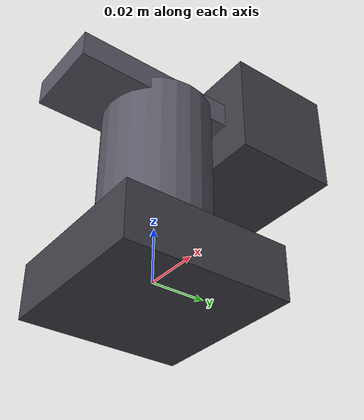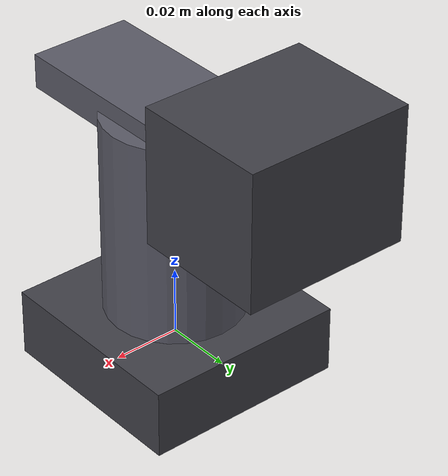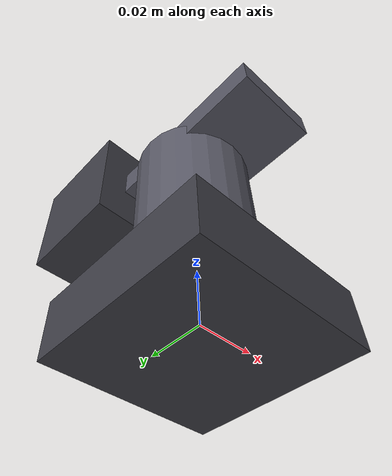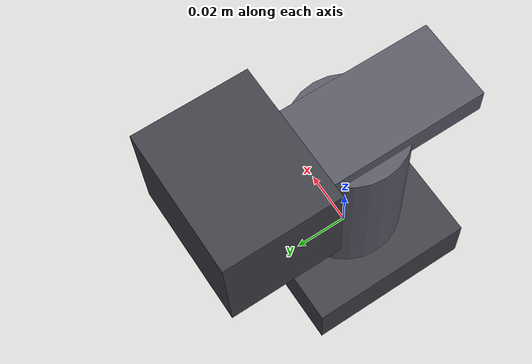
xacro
<?xml version="1.0"?>
<robot name="sbgc_gimbal" xmlns:xacro="http://www.ros.org/wiki/xacro">

  <xacro:arg name="prefix" default="gimbal_"/>

  <!-- Radians. Keep these in step with the driver's limit_min_deg /
       limit_max_deg; robot_state_publisher will otherwise render joint
       positions the driver refuses to command. -->
  <xacro:arg name="roll_min"  default="-0.785"/>
  <xacro:arg name="roll_max"  default="0.785"/>
  <xacro:arg name="pitch_min" default="-1.571"/>
  <xacro:arg name="pitch_max" default="0.698"/>
  <xacro:arg name="yaw_min"   default="-2.967"/>
  <xacro:arg name="yaw_max"   default="2.967"/>
  <xacro:arg name="max_rate"  default="0.79"/>

  <!-- Which stage the controller is bolted to, and where on it. -->
  <xacro:arg name="imu_parent" default="pitch"/>
  <xacro:arg name="imu_xyz"    default="0 0 0"/>
  <xacro:arg name="imu_rpy"    default="0 0 0"/>

  <xacro:include filename="$(find sbgc_description)/urdf/sbgc_gimbal.urdf.xacro"/>

  <link name="base_link"/>

  <xacro:sbgc_gimbal
      prefix="$(arg prefix)"
      parent="base_link"
      roll_min="$(arg roll_min)"   roll_max="$(arg roll_max)"
      pitch_min="$(arg pitch_min)" pitch_max="$(arg pitch_max)"
      yaw_min="$(arg yaw_min)"     yaw_max="$(arg yaw_max)"
      max_rate="$(arg max_rate)"
      imu_parent="$(arg imu_parent)"
      imu_xyz="$(arg imu_xyz)"
      imu_rpy="$(arg imu_rpy)">
    <origin xyz="0 0 0" rpy="0 0 0"/>
  </xacro:sbgc_gimbal>

</robot>

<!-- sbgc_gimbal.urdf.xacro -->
<robot xmlns:xacro="http://www.ros.org/wiki/xacro">

  <xacro:macro name="sbgc_gimbal" params="
      prefix:=gimbal_
      parent:=base_link
      *origin
      yaw_min:=-2.967  yaw_max:=2.967
      roll_min:=-0.785 roll_max:=0.785
      pitch_min:=-1.571 pitch_max:=0.698
      max_rate:=0.79
      imu_parent:=pitch
      imu_xyz:='0 0 0'
      imu_rpy:='0 0 0'">

    <!-- Where the gimbal bolts to whatever carries it. -->
    <link name="${prefix}base_link">
      <visual>
        <geometry><box size="0.06 0.06 0.02"/></geometry>
        <material name="${prefix}case"><color rgba="0.25 0.25 0.28 1.0"/></material>
      </visual>
      <collision>
        <geometry><box size="0.06 0.06 0.02"/></geometry>
      </collision>
    </link>

    <joint name="${prefix}mount_joint" type="fixed">
      <parent link="${parent}"/>
      <child link="${prefix}base_link"/>
      <xacro:insert_block name="origin"/>
    </joint>

    <!-- Yaw: outermost axis, turning about the mount normal. -->
    <link name="${prefix}yaw_link">
      <visual>
        <origin xyz="0 0 0.03"/>
        <geometry><cylinder radius="0.02" length="0.06"/></geometry>
        <material name="${prefix}arm"><color rgba="0.35 0.35 0.4 1.0"/></material>
      </visual>
    </link>
    <joint name="${prefix}yaw_joint" type="revolute">
      <parent link="${prefix}base_link"/>
      <child link="${prefix}yaw_link"/>
      <origin xyz="0 0 0.01"/>
      <axis xyz="0 0 1"/>
      <limit lower="${yaw_min}" upper="${yaw_max}" effort="1.0" velocity="${max_rate}"/>
    </joint>

    <!-- Roll: about the forward axis. The board holds this level with gravity
         unless it is told otherwise. -->
    <link name="${prefix}roll_link">
      <visual>
        <geometry><box size="0.03 0.08 0.01"/></geometry>
        <material name="${prefix}arm"/>
      </visual>
    </link>
    <joint name="${prefix}roll_joint" type="revolute">
      <parent link="${prefix}yaw_link"/>
      <child link="${prefix}roll_link"/>
      <origin xyz="0 0 0.06"/>
      <axis xyz="1 0 0"/>
      <limit lower="${roll_min}" upper="${roll_max}" effort="1.0" velocity="${max_rate}"/>
    </joint>

    <link name="${prefix}pitch_link">
      <visual>
        <geometry><box size="0.05 0.04 0.04"/></geometry>
        <material name="${prefix}case"/>
      </visual>
    </link>
    <joint name="${prefix}pitch_joint" type="revolute">
      <parent link="${prefix}roll_link"/>
      <child link="${prefix}pitch_link"/>
      <origin xyz="0 0.04 0"/>
      <axis xyz="0 -1 0"/>
      <limit lower="${pitch_min}" upper="${pitch_max}" effort="1.0" velocity="${max_rate}"/>
    </joint>

    <link name="${prefix}imu_link"/>
    <joint name="${prefix}imu_joint" type="fixed">
      <parent link="${prefix}${imu_parent}_link"/>
      <child link="${prefix}imu_link"/>
      <origin xyz="${imu_xyz}" rpy="${imu_rpy}"/>
    </joint>

    <link name="${prefix}camera_link"/>
    <joint name="${prefix}camera_joint" type="fixed">
      <parent link="${prefix}pitch_link"/>
      <child link="${prefix}camera_link"/>
      <origin xyz="0.025 0 0"/>
    </joint>

    <link name="${prefix}camera_optical_frame"/>
    <joint name="${prefix}camera_optical_joint" type="fixed">
      <parent link="${prefix}camera_link"/>
      <child link="${prefix}camera_optical_frame"/>
      <origin xyz="0 0 0" rpy="${-pi/2} 0 ${-pi/2}"/>
    </joint>

  </xacro:macro>
</robot>
